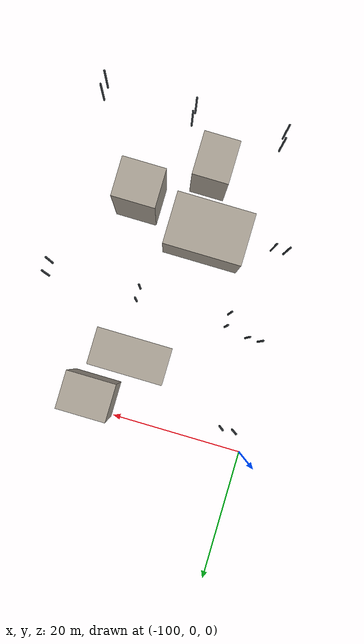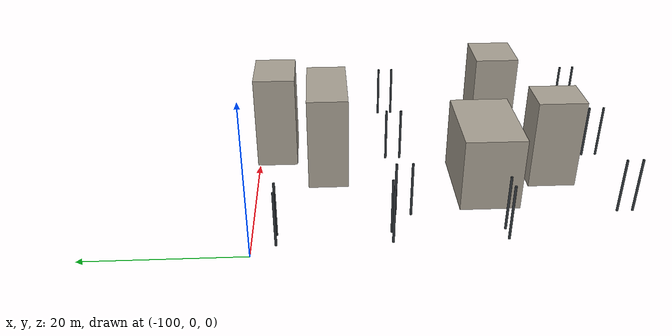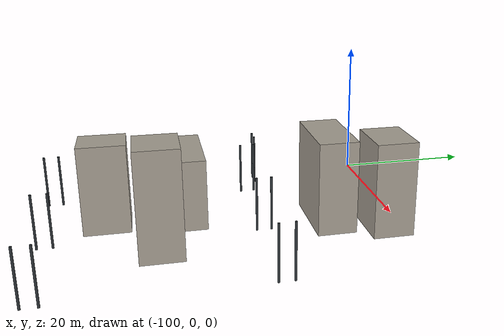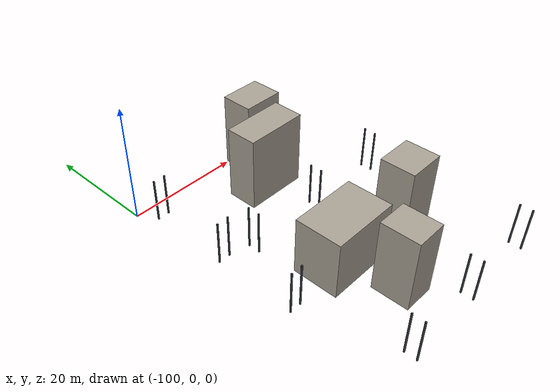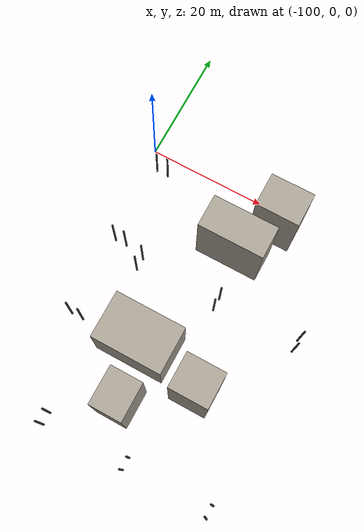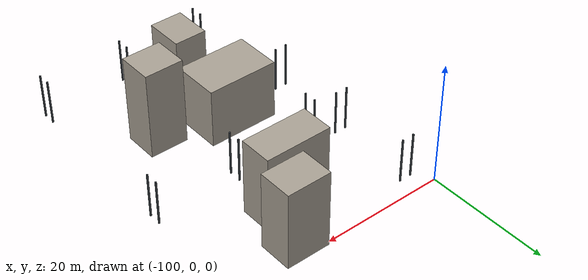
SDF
<sdf version="1.5">
 <world name="robocup_training_city_full_s7">
  <model name="building_0001">
   <static>true</static>
   <pose>-85.959868 -29.937603 0 0 0 0</pose>
   <link name="link">
    <pose>0 0 4.923585 0 0 0</pose>
    <collision name="collision">
     <geometry><box><size>11.635058 7.763764 9.84717</size></box></geometry>
     <surface><friction><ode><mu>1</mu><mu2>1</mu2></ode></friction></surface>
    </collision>
    <visual name="visual">
     <geometry><box><size>11.635058 7.763764 9.84717</size></box></geometry>
     <material>
      <ambient>0.297 0.2835 0.261 1</ambient>
      <diffuse>0.66 0.63 0.58 1</diffuse>
      <specular>0.04 0.04 0.04 1</specular>
      <emissive>0 0 0 1</emissive>
     </material>
    </visual>
    <inertial>
     <mass>1</mass>
     <inertia>
      <ixx>13.103566</ixx>
      <ixy>0</ixy>
      <ixz>0</ixz>
      <iyy>19.361778</iyy>
      <iyz>0</iyz>
      <izz>16.304217</izz>
     </inertia>
    </inertial>
   </link>
  </model>
  <model name="building_0007">
   <static>true</static>
   <pose>-74.897354 -32.51899 0 0 0 0</pose>
   <link name="link">
    <pose>0 0 7.285543 0 0 0</pose>
    <collision name="collision">
     <geometry><box><size>6.315097 5.682014 14.571086</size></box></geometry>
     <surface><friction><ode><mu>1</mu><mu2>1</mu2></ode></friction></surface>
    </collision>
    <visual name="visual">
     <geometry><box><size>6.315097 5.682014 14.571086</size></box></geometry>
     <material>
      <ambient>0.297 0.2835 0.261 1</ambient>
      <diffuse>0.66 0.63 0.58 1</diffuse>
      <specular>0.04 0.04 0.04 1</specular>
      <emissive>0 0 0 1</emissive>
     </material>
    </visual>
    <inertial>
     <mass>1</mass>
     <inertia>
      <ixx>20.383486</ixx>
      <ixy>0</ixy>
      <ixz>0</ixz>
      <iyy>21.016416</iyy>
      <iyz>0</iyz>
      <izz>6.013811</izz>
     </inertia>
    </inertial>
   </link>
  </model>
  <model name="building_0083">
   <static>true</static>
   <pose>-84.11567 -39.307665 0 0 0 0</pose>
   <link name="link">
    <pose>0 0 6.138636 0 0 0</pose>
    <collision name="collision">
     <geometry><box><size>5.316662 6.297464 12.277272</size></box></geometry>
     <surface><friction><ode><mu>1</mu><mu2>1</mu2></ode></friction></surface>
    </collision>
    <visual name="visual">
     <geometry><box><size>5.316662 6.297464 12.277272</size></box></geometry>
     <material>
      <ambient>0.297 0.2835 0.261 1</ambient>
      <diffuse>0.66 0.63 0.58 1</diffuse>
      <specular>0.04 0.04 0.04 1</specular>
      <emissive>0 0 0 1</emissive>
     </material>
    </visual>
    <inertial>
     <mass>1</mass>
     <inertia>
      <ixx>15.865788</ixx>
      <ixy>0</ixy>
      <ixz>0</ixz>
      <iyy>14.916525</iyy>
      <iyz>0</iyz>
      <izz>5.660412</izz>
     </inertia>
    </inertial>
   </link>
  </model>
  <model name="building_0885">
   <static>true</static>
   <pose>-76.112356 -2.415043 0 0 0 0</pose>
   <link name="link">
    <pose>0 0 6.467856 0 0 0</pose>
    <collision name="collision">
     <geometry><box><size>7.175386 5.524574 12.935713</size></box></geometry>
     <surface><friction><ode><mu>1</mu><mu2>1</mu2></ode></friction></surface>
    </collision>
    <visual name="visual">
     <geometry><box><size>7.175386 5.524574 12.935713</size></box></geometry>
     <material>
      <ambient>0.297 0.2835 0.261 1</ambient>
      <diffuse>0.66 0.63 0.58 1</diffuse>
      <specular>0.04 0.04 0.04 1</specular>
      <emissive>0 0 0 1</emissive>
     </material>
    </visual>
    <inertial>
     <mass>1</mass>
     <inertia>
      <ixx>16.487799</ixx>
      <ixy>0</ixy>
      <ixz>0</ixz>
      <iyy>18.234903</iyy>
      <iyz>0</iyz>
      <izz>6.833924</izz>
     </inertia>
    </inertial>
   </link>
  </model>
  <model name="building_0978">
   <static>true</static>
   <pose>-80.336144 -9.429474 0 0 0 0</pose>
   <link name="link">
    <pose>0 0 6.364518 0 0 0</pose>
    <collision name="collision">
     <geometry><box><size>10.800505 5.325004 12.729036</size></box></geometry>
     <surface><friction><ode><mu>1</mu><mu2>1</mu2></ode></friction></surface>
    </collision>
    <visual name="visual">
     <geometry><box><size>10.800505 5.325004 12.729036</size></box></geometry>
     <material>
      <ambient>0.297 0.2835 0.261 1</ambient>
      <diffuse>0.66 0.63 0.58 1</diffuse>
      <specular>0.04 0.04 0.04 1</specular>
      <emissive>0 0 0 1</emissive>
     </material>
    </visual>
    <inertial>
     <mass>1</mass>
     <inertia>
      <ixx>15.865335</ixx>
      <ixy>0</ixy>
      <ixz>0</ixz>
      <iyy>23.223272</iyy>
      <iyz>0</iyz>
      <izz>12.083881</izz>
     </inertia>
    </inertial>
   </link>
  </model>
  <model name="lamp_post_2505">
   <static>true</static>
   <pose>-98 -30.925353 0 0 0 0</pose>
   <link name="link">
    <pose>0 0 3.75 0 0 0</pose>
    <collision name="collision">
     <geometry><cylinder><radius>0.15</radius><length>7.5</length></cylinder></geometry>
     <surface><friction><ode><mu>1</mu><mu2>1</mu2></ode></friction></surface>
    </collision>
    <visual name="visual">
     <geometry><cylinder><radius>0.15</radius><length>7.5</length></cylinder></geometry>
     <material>
      <ambient>0.09 0.099 0.108 1</ambient>
      <diffuse>0.2 0.22 0.24 1</diffuse>
      <specular>0.04 0.04 0.04 1</specular>
      <emissive>0 0 0 1</emissive>
     </material>
    </visual>
    <inertial>
     <mass>1</mass>
     <inertia>
      <ixx>4.693125</ixx>
      <ixy>0</ixy>
      <ixz>0</ixz>
      <iyy>4.693125</iyy>
      <iyz>0</iyz>
      <izz>0.01125</izz>
     </inertia>
    </inertial>
   </link>
  </model>
  <model name="lamp_post_2506">
   <static>true</static>
   <pose>-96 -30.925353 0 0 0 0</pose>
   <link name="link">
    <pose>0 0 3.75 0 0 0</pose>
    <collision name="collision">
     <geometry><cylinder><radius>0.15</radius><length>7.5</length></cylinder></geometry>
     <surface><friction><ode><mu>1</mu><mu2>1</mu2></ode></friction></surface>
    </collision>
    <visual name="visual">
     <geometry><cylinder><radius>0.15</radius><length>7.5</length></cylinder></geometry>
     <material>
      <ambient>0.09 0.099 0.108 1</ambient>
      <diffuse>0.2 0.22 0.24 1</diffuse>
      <specular>0.04 0.04 0.04 1</specular>
      <emissive>0 0 0 1</emissive>
     </material>
    </visual>
    <inertial>
     <mass>1</mass>
     <inertia>
      <ixx>4.693125</ixx>
      <ixy>0</ixy>
      <ixz>0</ixz>
      <iyy>4.693125</iyy>
      <iyz>0</iyz>
      <izz>0.01125</izz>
     </inertia>
    </inertial>
   </link>
  </model>
  <model name="lamp_post_2507">
   <static>true</static>
   <pose>-98 -16.925353 0 0 0 0</pose>
   <link name="link">
    <pose>0 0 3.75 0 0 0</pose>
    <collision name="collision">
     <geometry><cylinder><radius>0.15</radius><length>7.5</length></cylinder></geometry>
     <surface><friction><ode><mu>1</mu><mu2>1</mu2></ode></friction></surface>
    </collision>
    <visual name="visual">
     <geometry><cylinder><radius>0.15</radius><length>7.5</length></cylinder></geometry>
     <material>
      <ambient>0.09 0.099 0.108 1</ambient>
      <diffuse>0.2 0.22 0.24 1</diffuse>
      <specular>0.04 0.04 0.04 1</specular>
      <emissive>0 0 0 1</emissive>
     </material>
    </visual>
    <inertial>
     <mass>1</mass>
     <inertia>
      <ixx>4.693125</ixx>
      <ixy>0</ixy>
      <ixz>0</ixz>
      <iyy>4.693125</iyy>
      <iyz>0</iyz>
      <izz>0.01125</izz>
     </inertia>
    </inertial>
   </link>
  </model>
  <model name="lamp_post_2508">
   <static>true</static>
   <pose>-96 -16.925353 0 0 0 0</pose>
   <link name="link">
    <pose>0 0 3.75 0 0 0</pose>
    <collision name="collision">
     <geometry><cylinder><radius>0.15</radius><length>7.5</length></cylinder></geometry>
     <surface><friction><ode><mu>1</mu><mu2>1</mu2></ode></friction></surface>
    </collision>
    <visual name="visual">
     <geometry><cylinder><radius>0.15</radius><length>7.5</length></cylinder></geometry>
     <material>
      <ambient>0.09 0.099 0.108 1</ambient>
      <diffuse>0.2 0.22 0.24 1</diffuse>
      <specular>0.04 0.04 0.04 1</specular>
      <emissive>0 0 0 1</emissive>
     </material>
    </visual>
    <inertial>
     <mass>1</mass>
     <inertia>
      <ixx>4.693125</ixx>
      <ixy>0</ixy>
      <ixz>0</ixz>
      <iyy>4.693125</iyy>
      <iyz>0</iyz>
      <izz>0.01125</izz>
     </inertia>
    </inertial>
   </link>
  </model>
  <model name="lamp_post_2509">
   <static>true</static>
   <pose>-98 -2.925353 0 0 0 0</pose>
   <link name="link">
    <pose>0 0 3.75 0 0 0</pose>
    <collision name="collision">
     <geometry><cylinder><radius>0.15</radius><length>7.5</length></cylinder></geometry>
     <surface><friction><ode><mu>1</mu><mu2>1</mu2></ode></friction></surface>
    </collision>
    <visual name="visual">
     <geometry><cylinder><radius>0.15</radius><length>7.5</length></cylinder></geometry>
     <material>
      <ambient>0.09 0.099 0.108 1</ambient>
      <diffuse>0.2 0.22 0.24 1</diffuse>
      <specular>0.04 0.04 0.04 1</specular>
      <emissive>0 0 0 1</emissive>
     </material>
    </visual>
    <inertial>
     <mass>1</mass>
     <inertia>
      <ixx>4.693125</ixx>
      <ixy>0</ixy>
      <ixz>0</ixz>
      <iyy>4.693125</iyy>
      <iyz>0</iyz>
      <izz>0.01125</izz>
     </inertia>
    </inertial>
   </link>
  </model>
  <model name="lamp_post_2510">
   <static>true</static>
   <pose>-96 -2.925353 0 0 0 0</pose>
   <link name="link">
    <pose>0 0 3.75 0 0 0</pose>
    <collision name="collision">
     <geometry><cylinder><radius>0.15</radius><length>7.5</length></cylinder></geometry>
     <surface><friction><ode><mu>1</mu><mu2>1</mu2></ode></friction></surface>
    </collision>
    <visual name="visual">
     <geometry><cylinder><radius>0.15</radius><length>7.5</length></cylinder></geometry>
     <material>
      <ambient>0.09 0.099 0.108 1</ambient>
      <diffuse>0.2 0.22 0.24 1</diffuse>
      <specular>0.04 0.04 0.04 1</specular>
      <emissive>0 0 0 1</emissive>
     </material>
    </visual>
    <inertial>
     <mass>1</mass>
     <inertia>
      <ixx>4.693125</ixx>
      <ixy>0</ixy>
      <ixz>0</ixz>
      <iyy>4.693125</iyy>
      <iyz>0</iyz>
      <izz>0.01125</izz>
     </inertia>
    </inertial>
   </link>
  </model>
  <model name="lamp_post_2579">
   <static>true</static>
   <pose>-92.92744 -48 0 0 0 0</pose>
   <link name="link">
    <pose>0 0 3.75 0 0 0</pose>
    <collision name="collision">
     <geometry><cylinder><radius>0.15</radius><length>7.5</length></cylinder></geometry>
     <surface><friction><ode><mu>1</mu><mu2>1</mu2></ode></friction></surface>
    </collision>
    <visual name="visual">
     <geometry><cylinder><radius>0.15</radius><length>7.5</length></cylinder></geometry>
     <material>
      <ambient>0.09 0.099 0.108 1</ambient>
      <diffuse>0.2 0.22 0.24 1</diffuse>
      <specular>0.04 0.04 0.04 1</specular>
      <emissive>0 0 0 1</emissive>
     </material>
    </visual>
    <inertial>
     <mass>1</mass>
     <inertia>
      <ixx>4.693125</ixx>
      <ixy>0</ixy>
      <ixz>0</ixz>
      <iyy>4.693125</iyy>
      <iyz>0</iyz>
      <izz>0.01125</izz>
     </inertia>
    </inertial>
   </link>
  </model>
  <model name="lamp_post_2580">
   <static>true</static>
   <pose>-92.92744 -46 0 0 0 0</pose>
   <link name="link">
    <pose>0 0 3.75 0 0 0</pose>
    <collision name="collision">
     <geometry><cylinder><radius>0.15</radius><length>7.5</length></cylinder></geometry>
     <surface><friction><ode><mu>1</mu><mu2>1</mu2></ode></friction></surface>
    </collision>
    <visual name="visual">
     <geometry><cylinder><radius>0.15</radius><length>7.5</length></cylinder></geometry>
     <material>
      <ambient>0.09 0.099 0.108 1</ambient>
      <diffuse>0.2 0.22 0.24 1</diffuse>
      <specular>0.04 0.04 0.04 1</specular>
      <emissive>0 0 0 1</emissive>
     </material>
    </visual>
    <inertial>
     <mass>1</mass>
     <inertia>
      <ixx>4.693125</ixx>
      <ixy>0</ixy>
      <ixz>0</ixz>
      <iyy>4.693125</iyy>
      <iyz>0</iyz>
      <izz>0.01125</izz>
     </inertia>
    </inertial>
   </link>
  </model>
  <model name="lamp_post_2581">
   <static>true</static>
   <pose>-78.92744 -48 0 0 0 0</pose>
   <link name="link">
    <pose>0 0 3.75 0 0 0</pose>
    <collision name="collision">
     <geometry><cylinder><radius>0.15</radius><length>7.5</length></cylinder></geometry>
     <surface><friction><ode><mu>1</mu><mu2>1</mu2></ode></friction></surface>
    </collision>
    <visual name="visual">
     <geometry><cylinder><radius>0.15</radius><length>7.5</length></cylinder></geometry>
     <material>
      <ambient>0.09 0.099 0.108 1</ambient>
      <diffuse>0.2 0.22 0.24 1</diffuse>
      <specular>0.04 0.04 0.04 1</specular>
      <emissive>0 0 0 1</emissive>
     </material>
    </visual>
    <inertial>
     <mass>1</mass>
     <inertia>
      <ixx>4.693125</ixx>
      <ixy>0</ixy>
      <ixz>0</ixz>
      <iyy>4.693125</iyy>
      <iyz>0</iyz>
      <izz>0.01125</izz>
     </inertia>
    </inertial>
   </link>
  </model>
  <model name="lamp_post_2582">
   <static>true</static>
   <pose>-78.92744 -46 0 0 0 0</pose>
   <link name="link">
    <pose>0 0 3.75 0 0 0</pose>
    <collision name="collision">
     <geometry><cylinder><radius>0.15</radius><length>7.5</length></cylinder></geometry>
     <surface><friction><ode><mu>1</mu><mu2>1</mu2></ode></friction></surface>
    </collision>
    <visual name="visual">
     <geometry><cylinder><radius>0.15</radius><length>7.5</length></cylinder></geometry>
     <material>
      <ambient>0.09 0.099 0.108 1</ambient>
      <diffuse>0.2 0.22 0.24 1</diffuse>
      <specular>0.04 0.04 0.04 1</specular>
      <emissive>0 0 0 1</emissive>
     </material>
    </visual>
    <inertial>
     <mass>1</mass>
     <inertia>
      <ixx>4.693125</ixx>
      <ixy>0</ixy>
      <ixz>0</ixz>
      <iyy>4.693125</iyy>
      <iyz>0</iyz>
      <izz>0.01125</izz>
     </inertia>
    </inertial>
   </link>
  </model>
  <model name="lamp_post_2583">
   <static>true</static>
   <pose>-64.92744 -48 0 0 0 0</pose>
   <link name="link">
    <pose>0 0 3.75 0 0 0</pose>
    <collision name="collision">
     <geometry><cylinder><radius>0.15</radius><length>7.5</length></cylinder></geometry>
     <surface><friction><ode><mu>1</mu><mu2>1</mu2></ode></friction></surface>
    </collision>
    <visual name="visual">
     <geometry><cylinder><radius>0.15</radius><length>7.5</length></cylinder></geometry>
     <material>
      <ambient>0.09 0.099 0.108 1</ambient>
      <diffuse>0.2 0.22 0.24 1</diffuse>
      <specular>0.04 0.04 0.04 1</specular>
      <emissive>0 0 0 1</emissive>
     </material>
    </visual>
    <inertial>
     <mass>1</mass>
     <inertia>
      <ixx>4.693125</ixx>
      <ixy>0</ixy>
      <ixz>0</ixz>
      <iyy>4.693125</iyy>
      <iyz>0</iyz>
      <izz>0.01125</izz>
     </inertia>
    </inertial>
   </link>
  </model>
  <model name="lamp_post_2584">
   <static>true</static>
   <pose>-64.92744 -46 0 0 0 0</pose>
   <link name="link">
    <pose>0 0 3.75 0 0 0</pose>
    <collision name="collision">
     <geometry><cylinder><radius>0.15</radius><length>7.5</length></cylinder></geometry>
     <surface><friction><ode><mu>1</mu><mu2>1</mu2></ode></friction></surface>
    </collision>
    <visual name="visual">
     <geometry><cylinder><radius>0.15</radius><length>7.5</length></cylinder></geometry>
     <material>
      <ambient>0.09 0.099 0.108 1</ambient>
      <diffuse>0.2 0.22 0.24 1</diffuse>
      <specular>0.04 0.04 0.04 1</specular>
      <emissive>0 0 0 1</emissive>
     </material>
    </visual>
    <inertial>
     <mass>1</mass>
     <inertia>
      <ixx>4.693125</ixx>
      <ixy>0</ixy>
      <ixz>0</ixz>
      <iyy>4.693125</iyy>
      <iyz>0</iyz>
      <izz>0.01125</izz>
     </inertia>
    </inertial>
   </link>
  </model>
  <model name="lamp_post_2607">
   <static>true</static>
   <pose>-92.491232 -19.666667 0 0 0 0</pose>
   <link name="link">
    <pose>0 0 3.75 0 0 0</pose>
    <collision name="collision">
     <geometry><cylinder><radius>0.15</radius><length>7.5</length></cylinder></geometry>
     <surface><friction><ode><mu>1</mu><mu2>1</mu2></ode></friction></surface>
    </collision>
    <visual name="visual">
     <geometry><cylinder><radius>0.15</radius><length>7.5</length></cylinder></geometry>
     <material>
      <ambient>0.09 0.099 0.108 1</ambient>
      <diffuse>0.2 0.22 0.24 1</diffuse>
      <specular>0.04 0.04 0.04 1</specular>
      <emissive>0 0 0 1</emissive>
     </material>
    </visual>
    <inertial>
     <mass>1</mass>
     <inertia>
      <ixx>4.693125</ixx>
      <ixy>0</ixy>
      <ixz>0</ixz>
      <iyy>4.693125</iyy>
      <iyz>0</iyz>
      <izz>0.01125</izz>
     </inertia>
    </inertial>
   </link>
  </model>
  <model name="lamp_post_2608">
   <static>true</static>
   <pose>-92.491232 -17.666667 0 0 0 0</pose>
   <link name="link">
    <pose>0 0 3.75 0 0 0</pose>
    <collision name="collision">
     <geometry><cylinder><radius>0.15</radius><length>7.5</length></cylinder></geometry>
     <surface><friction><ode><mu>1</mu><mu2>1</mu2></ode></friction></surface>
    </collision>
    <visual name="visual">
     <geometry><cylinder><radius>0.15</radius><length>7.5</length></cylinder></geometry>
     <material>
      <ambient>0.09 0.099 0.108 1</ambient>
      <diffuse>0.2 0.22 0.24 1</diffuse>
      <specular>0.04 0.04 0.04 1</specular>
      <emissive>0 0 0 1</emissive>
     </material>
    </visual>
    <inertial>
     <mass>1</mass>
     <inertia>
      <ixx>4.693125</ixx>
      <ixy>0</ixy>
      <ixz>0</ixz>
      <iyy>4.693125</iyy>
      <iyz>0</iyz>
      <izz>0.01125</izz>
     </inertia>
    </inertial>
   </link>
  </model>
  <model name="lamp_post_2609">
   <static>true</static>
   <pose>-78.491232 -19.666667 0 0 0 0</pose>
   <link name="link">
    <pose>0 0 3.75 0 0 0</pose>
    <collision name="collision">
     <geometry><cylinder><radius>0.15</radius><length>7.5</length></cylinder></geometry>
     <surface><friction><ode><mu>1</mu><mu2>1</mu2></ode></friction></surface>
    </collision>
    <visual name="visual">
     <geometry><cylinder><radius>0.15</radius><length>7.5</length></cylinder></geometry>
     <material>
      <ambient>0.09 0.099 0.108 1</ambient>
      <diffuse>0.2 0.22 0.24 1</diffuse>
      <specular>0.04 0.04 0.04 1</specular>
      <emissive>0 0 0 1</emissive>
     </material>
    </visual>
    <inertial>
     <mass>1</mass>
     <inertia>
      <ixx>4.693125</ixx>
      <ixy>0</ixy>
      <ixz>0</ixz>
      <iyy>4.693125</iyy>
      <iyz>0</iyz>
      <izz>0.01125</izz>
     </inertia>
    </inertial>
   </link>
  </model>
  <model name="lamp_post_2610">
   <static>true</static>
   <pose>-78.491232 -17.666667 0 0 0 0</pose>
   <link name="link">
    <pose>0 0 3.75 0 0 0</pose>
    <collision name="collision">
     <geometry><cylinder><radius>0.15</radius><length>7.5</length></cylinder></geometry>
     <surface><friction><ode><mu>1</mu><mu2>1</mu2></ode></friction></surface>
    </collision>
    <visual name="visual">
     <geometry><cylinder><radius>0.15</radius><length>7.5</length></cylinder></geometry>
     <material>
      <ambient>0.09 0.099 0.108 1</ambient>
      <diffuse>0.2 0.22 0.24 1</diffuse>
      <specular>0.04 0.04 0.04 1</specular>
      <emissive>0 0 0 1</emissive>
     </material>
    </visual>
    <inertial>
     <mass>1</mass>
     <inertia>
      <ixx>4.693125</ixx>
      <ixy>0</ixy>
      <ixz>0</ixz>
      <iyy>4.693125</iyy>
      <iyz>0</iyz>
      <izz>0.01125</izz>
     </inertia>
    </inertial>
   </link>
  </model>
  <model name="lamp_post_2611">
   <static>true</static>
   <pose>-64.491232 -19.666667 0 0 0 0</pose>
   <link name="link">
    <pose>0 0 3.75 0 0 0</pose>
    <collision name="collision">
     <geometry><cylinder><radius>0.15</radius><length>7.5</length></cylinder></geometry>
     <surface><friction><ode><mu>1</mu><mu2>1</mu2></ode></friction></surface>
    </collision>
    <visual name="visual">
     <geometry><cylinder><radius>0.15</radius><length>7.5</length></cylinder></geometry>
     <material>
      <ambient>0.09 0.099 0.108 1</ambient>
      <diffuse>0.2 0.22 0.24 1</diffuse>
      <specular>0.04 0.04 0.04 1</specular>
      <emissive>0 0 0 1</emissive>
     </material>
    </visual>
    <inertial>
     <mass>1</mass>
     <inertia>
      <ixx>4.693125</ixx>
      <ixy>0</ixy>
      <ixz>0</ixz>
      <iyy>4.693125</iyy>
      <iyz>0</iyz>
      <izz>0.01125</izz>
     </inertia>
    </inertial>
   </link>
  </model>
  <model name="lamp_post_2612">
   <static>true</static>
   <pose>-64.491232 -17.666667 0 0 0 0</pose>
   <link name="link">
    <pose>0 0 3.75 0 0 0</pose>
    <collision name="collision">
     <geometry><cylinder><radius>0.15</radius><length>7.5</length></cylinder></geometry>
     <surface><friction><ode><mu>1</mu><mu2>1</mu2></ode></friction></surface>
    </collision>
    <visual name="visual">
     <geometry><cylinder><radius>0.15</radius><length>7.5</length></cylinder></geometry>
     <material>
      <ambient>0.09 0.099 0.108 1</ambient>
      <diffuse>0.2 0.22 0.24 1</diffuse>
      <specular>0.04 0.04 0.04 1</specular>
      <emissive>0 0 0 1</emissive>
     </material>
    </visual>
    <inertial>
     <mass>1</mass>
     <inertia>
      <ixx>4.693125</ixx>
      <ixy>0</ixy>
      <ixz>0</ixz>
      <iyy>4.693125</iyy>
      <iyz>0</iyz>
      <izz>0.01125</izz>
     </inertia>
    </inertial>
   </link>
  </model>
 </world>
</sdf>
